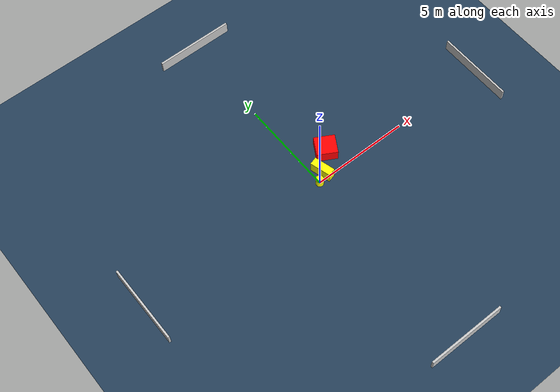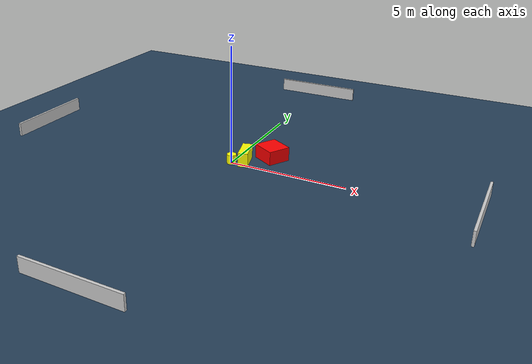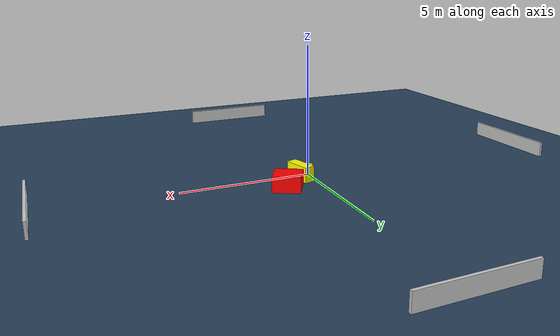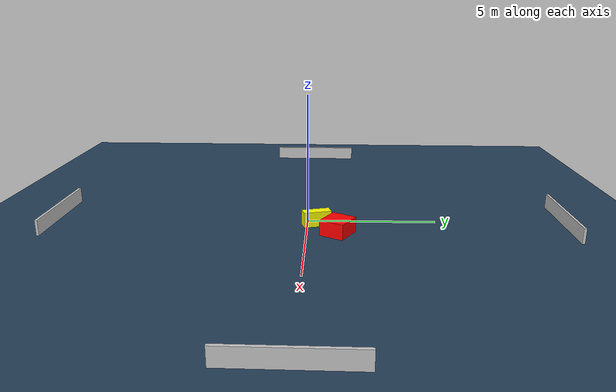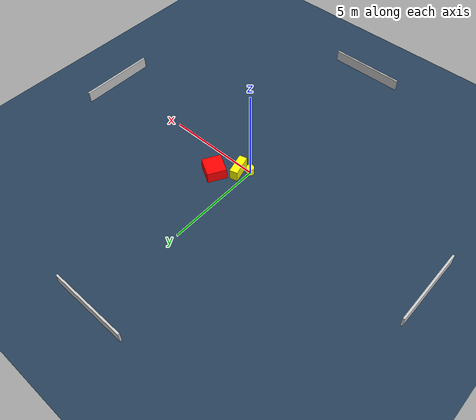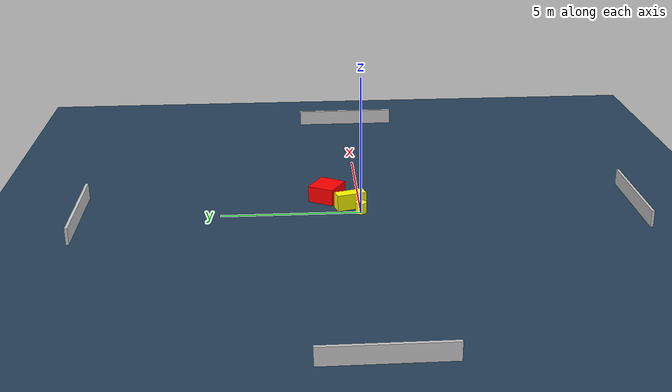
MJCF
<?xml version="1.0" ?>
<mujoco model="generated_environment">
  <option timestep="0.01" integrator="RK4" cone="elliptic"/>
  <default>
    <geom density="1"/>
  </default>
  <asset>
    <texture builtin="gradient" height="3072" name="skybox" rgb1="0.3 0.5 0.7" rgb2="0 0 0" type="skybox" width="512"/>
    <texture builtin="checker" height="300" name="groundplane" rgb1="0.2 0.3 0.4" rgb2="0.1 0.2 0.3" type="2d" width="300"/>
    <material name="groundplane" reflectance="0.2" texrepeat="5 5" texture="groundplane"/>
  </asset>
  <worldbody>
    <light dir="0 0 -1" directional="true" pos="0 0 1.5"/>
    <geom condim="3" friction="0.5 0.005 0.001" material="groundplane" name="floor" pos="0 0 0" size="0 0 0.05" type="plane"/>
    <body name="walls">
      <geom name="wall_1" condim="4" pos="-10.0 0.0 0.3" rgba="0.800000011920929 0.800000011920929 0.800000011920929 1.0" size="0.05 2.0 0.3" type="box"/>
      <geom name="wall_2" condim="4" pos="10.0 0.0 0.3" rgba="0.800000011920929 0.800000011920929 0.800000011920929 1.0" size="0.05 2.0 0.3" type="box"/>
      <geom name="wall_3" condim="4" pos="0.0 -10.0 0.3" rgba="0.800000011920929 0.800000011920929 0.800000011920929 1.0" size="2.0 0.05 0.3" type="box"/>
      <geom name="wall_4" condim="4" pos="0.0 10.0 0.3" rgba="0.800000011920929 0.800000011920929 0.800000011920929 1.0" size="2.0 0.05 0.3" type="box"/>
    </body>
    <body name="robot">
      <joint name="joint_x" type="slide" pos="0 0 0" axis="1 0 0"/>
      <joint name="joint_y" type="slide" pos="0 0 0" axis="0 1 0"/>
      <geom name="robot" type="cylinder" pos="0.0 0.0 0.2" size="0.2 0.2 0.0" mass="5.0" friction="1.0 0.005 0.0001" condim="4" rgba="1.0 1.0 0.0 1.0"/>
    </body>
    <body name="obstacle_1_movable">
      <geom name="obstacle_1_movable" condim="4" pos="0.4569800664728967 0.3557484731628873 0.3" euler="0 0 285.6449076684739" friction="0.0 0.005 0.001" rgba="1.0 1.0 0.0 1.0" size="0.5452127789414152 0.20481003822230234 0.3" type="box" mass="0.1"/>
      <joint type="free"/>
    </body>
    <body name="obstacle_2_static">
      <geom name="obstacle_2_static" condim="4" pos="1.3289859742389205 1.1730873007552416 0.3" euler="0 0 240.32974917536757" friction="0.0 0.005 0.001" rgba="1.0 0.0 0.0 1.0" size="0.49325314755318783 0.5228798626925248 0.3" type="box"/>
    </body>
  </worldbody>
  <actuator>
    <motor name="actuator_x" joint="joint_x" gear="1" ctrlrange="-1 1"/>
    <motor name="actuator_y" joint="joint_y" gear="1" ctrlrange="-1 1"/>
  </actuator>
</mujoco>
